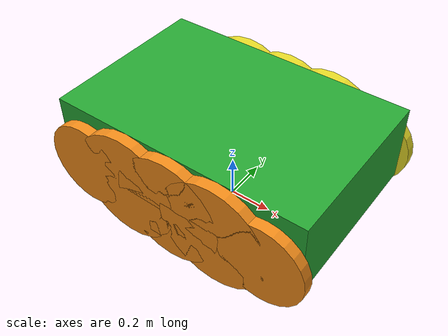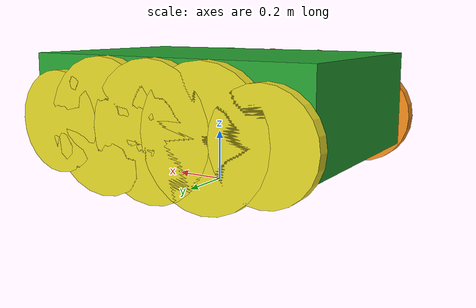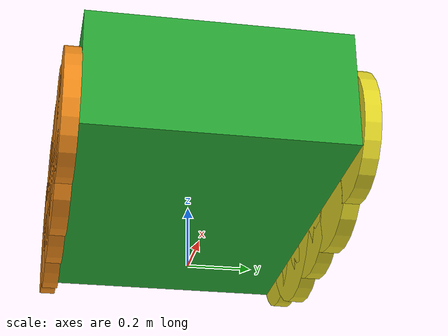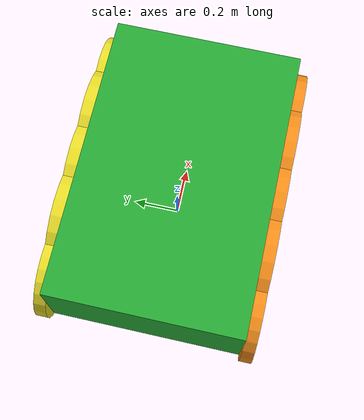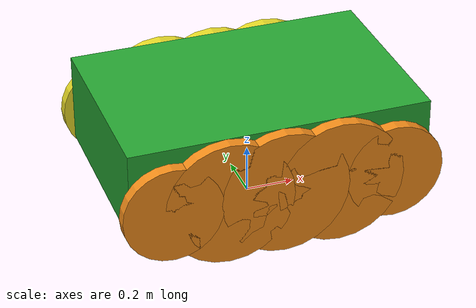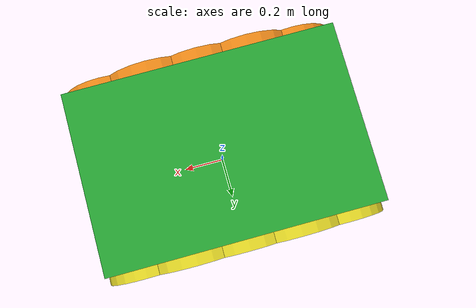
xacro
<?xml version="1.0"?>
<robot xmlns:xacro="http://www.ros.org/wiki/xacro">

    <!-- NAV2 WITH CAMERA -->
    <!-- SECTION 5 -->

    <xacro:arg name="enable_traction" default="true"/>

    <xacro:property name="total_length" value="1.3"/>
    <xacro:property name="base_length" value="1.218"/>
    <xacro:property name="base_width" value="0.8"/>
    <xacro:property name="base_hight" value=".37"/>
    <xacro:property name="base_mass" value="40."/>

    <xacro:property name="wheel_radius" value="0.26"/>
    <xacro:property name="wheel_length" value="0.05"/>
    <xacro:property name="wheel_mass" value="5."/>
    <xacro:property name="wheel_number" value="5"/>
    <xacro:property name="base_to_ground" value="0.15"/>

    <xacro:if value="$(arg enable_traction)">
        <xacro:property name="front_radius" value="0.2"/>
    </xacro:if>
    <xacro:unless value="$(arg enable_traction)">
        <xacro:property name="front_radius" value="0.26"/>
    </xacro:unless>

    <link name="base_footprint"/>
    <joint name="base_joint" type="fixed">
        <parent link="base_footprint"/>
        <child link="base_link"/>
        <origin xyz="0 0 ${base_to_ground}"/>
    </joint>

    <!-- Base Link -->
    <link name="base_link">
        <visual>
            <geometry>
                <box size="${base_length} ${base_width} ${base_hight}" />
            </geometry>
            <origin xyz="0 0 ${base_hight/2.}" rpy="0 0 0" />
            <material name="green" />
        </visual>
        <collision>
            <geometry>
                <box size="${base_length} ${base_width} ${base_hight}" />
            </geometry>
            <origin xyz="0 0 ${base_hight/2.}" rpy="0 0 0" />
        </collision>
        <xacro:box_inertia m="${base_mass}" l="${base_length}" w="${base_width}" h="${base_hight}"
                           xyz="0 0 ${base_hight/2.}" rpy="0 0 0" />
    </link>

    <!-- Left Wheels -->
    <xacro:macro name="left_wheel" params="id radii">
        <link name="left_wheel_${id}">
            <visual>
                <geometry>
                    <cylinder radius="${radii}" length="${wheel_length}"/>
                </geometry>
                <material name="yellow"/>
            </visual>
            <collision>
                <geometry>
                    <sphere radius="${radii}"/>
                </geometry>
            </collision>
            <xacro:cylinder_inertia m="${wheel_mass}" r="${radii}" l = "${wheel_length}"
                                    xyz="0 0 0" rpy="0 0 0"/>
        </link>
        <joint name="left_wheel_joint_${id}" type="continuous">
            <parent link="base_link"/>
            <child link="left_wheel_${id}"/>
            <origin xyz="${(total_length-2*front_radius)*(id-1)/(wheel_number-1) - (total_length-2*front_radius)/2}
                         ${base_width/2 + wheel_length/2} ${wheel_radius-base_to_ground}" rpy="${-pi/2.} 0 0"/>
            <axis xyz="0 0 1"/>
        </joint>
    </xacro:macro>

    <xacro:left_wheel id="1" radii="${front_radius}"/>
    <xacro:left_wheel id="2" radii="${wheel_radius}"/>
    <xacro:left_wheel id="3" radii="${wheel_radius}"/>
    <xacro:left_wheel id="4" radii="${wheel_radius}"/>
    <xacro:left_wheel id="5" radii="${front_radius}"/>

    <!-- Right Wheels -->
    <xacro:macro name="right_wheel" params="id radii">
        <link name="right_wheel_${id}">
            <visual>
                <geometry>
                    <cylinder radius="${radii}" length="${wheel_length}"/>
                </geometry>
                <material name="orange" />
            </visual>
            <collision>
                <geometry>
                    <sphere radius="${radii}"/>
                </geometry>
            </collision>
            <xacro:cylinder_inertia m="${wheel_mass}" r="${radii}" l = "${wheel_length}"
                                    xyz="0 0 0" rpy="0 0 0"/>
        </link>
        <joint name="right_wheel_joint_${id}" type="continuous">
            <parent link="base_link"/>
            <child link="right_wheel_${id}"/>
            <origin xyz="${(total_length-2*front_radius)*(id-1)/(wheel_number-1) - (total_length-2*front_radius)/2}
            -${base_width/2 + wheel_length/2} ${wheel_radius-base_to_ground}" rpy="${pi/2.} 0 0"/>
            <axis xyz="0 0 -1"/>
        </joint>
    </xacro:macro>

    <xacro:right_wheel id="1" radii="${front_radius}"/>
    <xacro:right_wheel id="2" radii="${wheel_radius}"/>
    <xacro:right_wheel id="3" radii="${wheel_radius}"/>
    <xacro:right_wheel id="4" radii="${wheel_radius}"/>
    <xacro:right_wheel id="5" radii="${front_radius}"/>

    <xacro:macro name="create_gazebo_wheel_tag" params="link_name color">
        <gazebo reference="${link_name}">
            <material>Gazebo/${color}</material>
            <mu1 value="1"></mu1>
            <mu2 value="1"></mu2>
        </gazebo>
    </xacro:macro>

    <xacro:macro name="create_gazebo_mu_wheel_tag" params="link_name color mu">
        <gazebo reference="${link_name}">
            <material>Gazebo/${color}</material>
            <mu1 value="${mu}"></mu1>
            <mu2 value="${mu}"></mu2>
        </gazebo>
    </xacro:macro>

    <xacro:if value="$(arg enable_traction)">
        <xacro:create_gazebo_wheel_tag link_name="left_wheel_1" color="Yellow"/>
        <xacro:create_gazebo_wheel_tag link_name="right_wheel_1" color="Orange"/>
        <xacro:create_gazebo_wheel_tag link_name="left_wheel_2" color="Yellow"/>
        <xacro:create_gazebo_wheel_tag link_name="right_wheel_2" color="Orange"/>
        <xacro:create_gazebo_wheel_tag link_name="left_wheel_3" color="Yellow"/>
        <xacro:create_gazebo_wheel_tag link_name="right_wheel_3" color="Orange"/>
        <xacro:create_gazebo_wheel_tag link_name="left_wheel_4" color="Yellow"/>
        <xacro:create_gazebo_wheel_tag link_name="right_wheel_4" color="Orange"/>
        <xacro:create_gazebo_wheel_tag link_name="left_wheel_5" color="Yellow"/>
        <xacro:create_gazebo_wheel_tag link_name="right_wheel_5" color="Orange"/>
    </xacro:if>
    <xacro:unless value="$(arg enable_traction)">
        <xacro:create_gazebo_mu_wheel_tag link_name="left_wheel_1"  color="Yellow" mu="0.001"/>
        <xacro:create_gazebo_mu_wheel_tag link_name="right_wheel_1" color="Orange" mu="0.001"/>
        <xacro:create_gazebo_mu_wheel_tag link_name="left_wheel_2"  color="Yellow" mu="0.05"/>
        <xacro:create_gazebo_mu_wheel_tag link_name="right_wheel_2" color="Orange" mu="0.05"/>
        <xacro:create_gazebo_wheel_tag    link_name="left_wheel_3"  color="Yellow"   />
        <xacro:create_gazebo_wheel_tag    link_name="right_wheel_3" color="Orange"   />
        <xacro:create_gazebo_mu_wheel_tag link_name="left_wheel_4"  color="Yellow" mu="0.05"/>
        <xacro:create_gazebo_mu_wheel_tag link_name="right_wheel_4" color="Orange" mu="0.05"/>
        <xacro:create_gazebo_mu_wheel_tag link_name="left_wheel_5"  color="Yellow" mu="0.001"/>
        <xacro:create_gazebo_mu_wheel_tag link_name="right_wheel_5" color="Orange" mu="0.001"/>
    </xacro:unless>

    <gazebo reference="base_link">
        <material>Gazebo/Green</material>
    </gazebo>

</robot>
